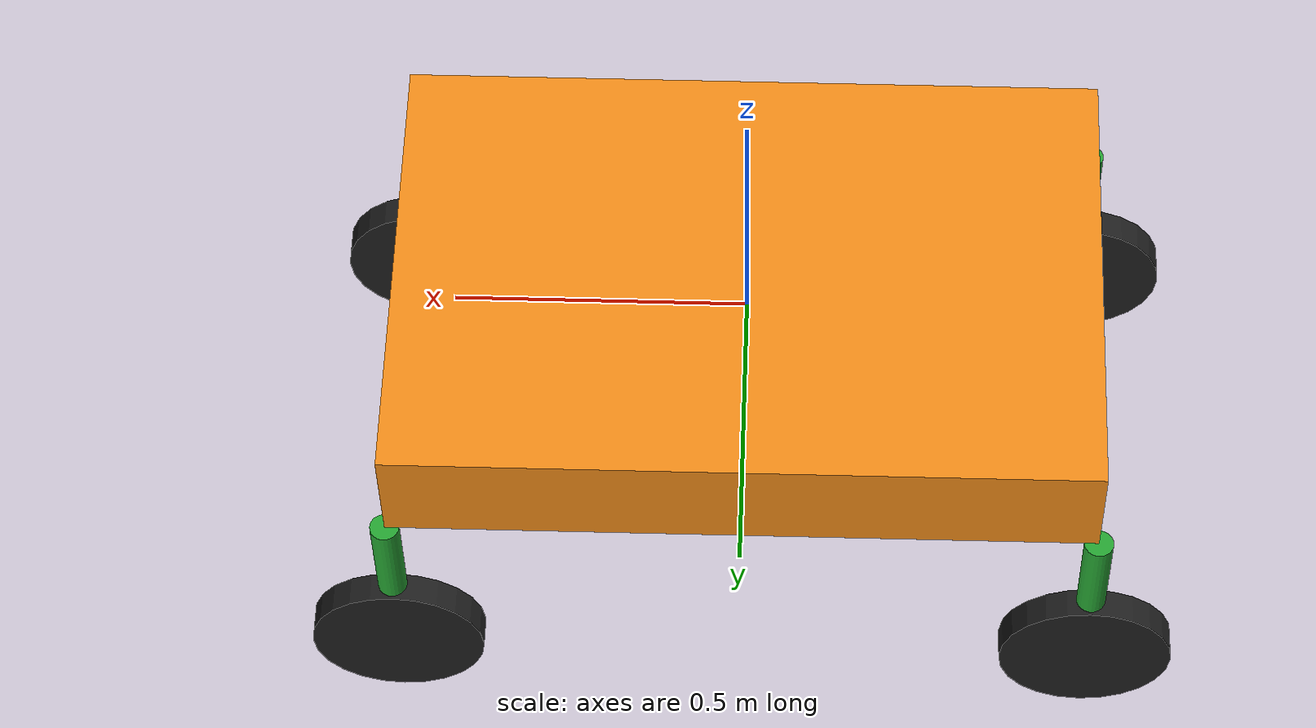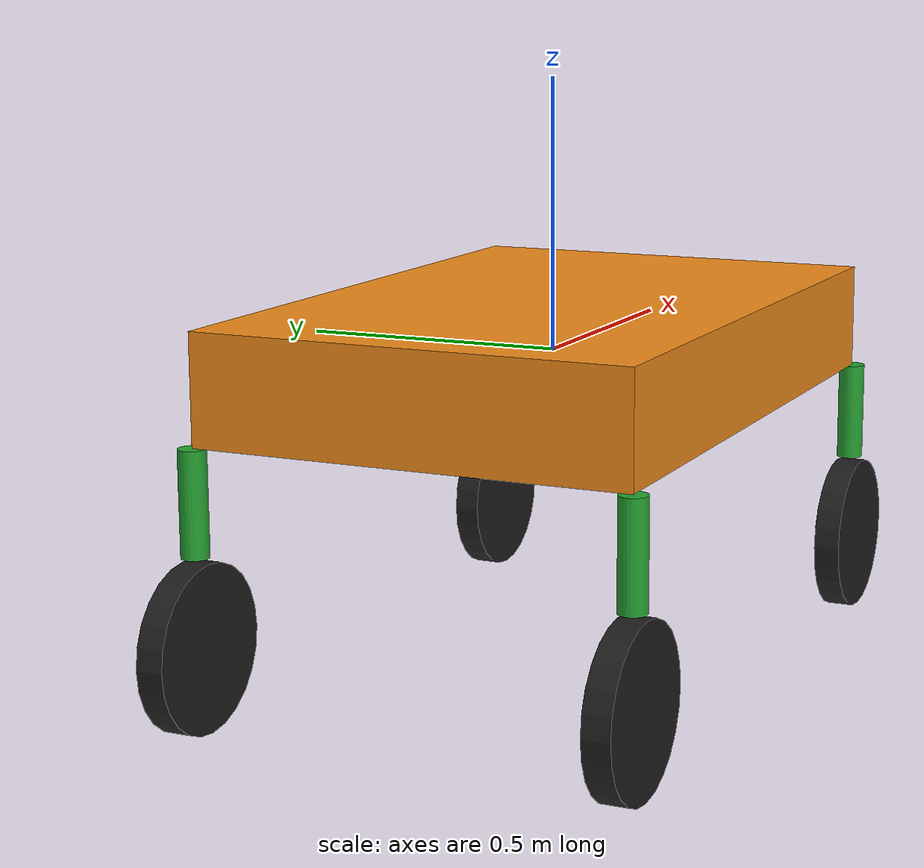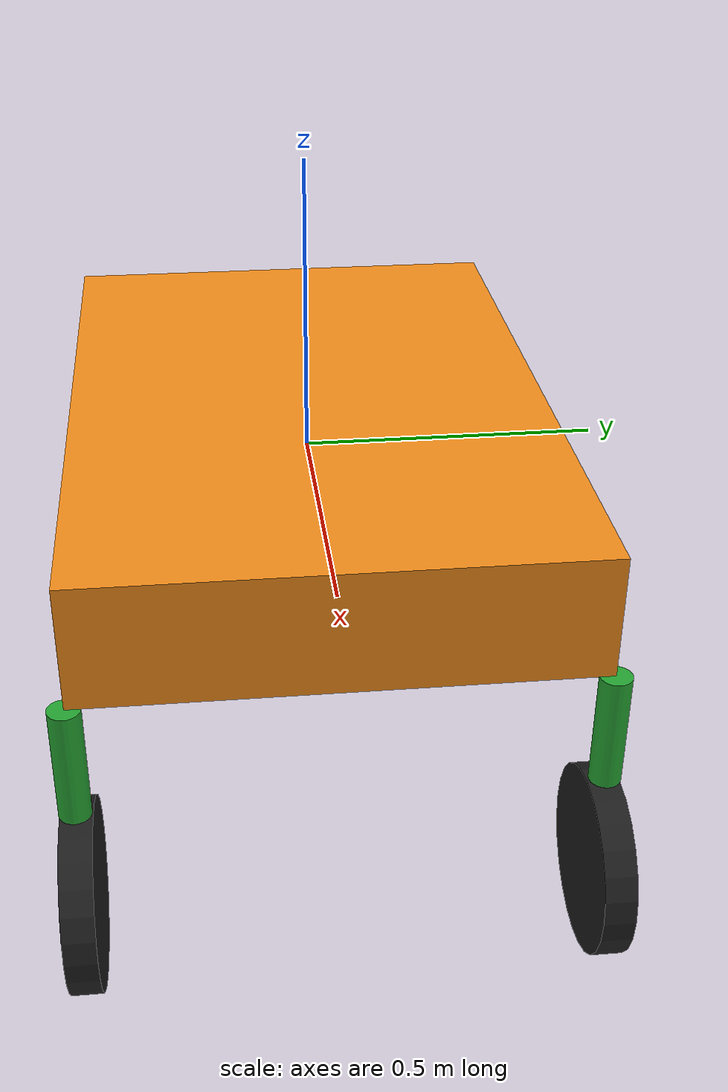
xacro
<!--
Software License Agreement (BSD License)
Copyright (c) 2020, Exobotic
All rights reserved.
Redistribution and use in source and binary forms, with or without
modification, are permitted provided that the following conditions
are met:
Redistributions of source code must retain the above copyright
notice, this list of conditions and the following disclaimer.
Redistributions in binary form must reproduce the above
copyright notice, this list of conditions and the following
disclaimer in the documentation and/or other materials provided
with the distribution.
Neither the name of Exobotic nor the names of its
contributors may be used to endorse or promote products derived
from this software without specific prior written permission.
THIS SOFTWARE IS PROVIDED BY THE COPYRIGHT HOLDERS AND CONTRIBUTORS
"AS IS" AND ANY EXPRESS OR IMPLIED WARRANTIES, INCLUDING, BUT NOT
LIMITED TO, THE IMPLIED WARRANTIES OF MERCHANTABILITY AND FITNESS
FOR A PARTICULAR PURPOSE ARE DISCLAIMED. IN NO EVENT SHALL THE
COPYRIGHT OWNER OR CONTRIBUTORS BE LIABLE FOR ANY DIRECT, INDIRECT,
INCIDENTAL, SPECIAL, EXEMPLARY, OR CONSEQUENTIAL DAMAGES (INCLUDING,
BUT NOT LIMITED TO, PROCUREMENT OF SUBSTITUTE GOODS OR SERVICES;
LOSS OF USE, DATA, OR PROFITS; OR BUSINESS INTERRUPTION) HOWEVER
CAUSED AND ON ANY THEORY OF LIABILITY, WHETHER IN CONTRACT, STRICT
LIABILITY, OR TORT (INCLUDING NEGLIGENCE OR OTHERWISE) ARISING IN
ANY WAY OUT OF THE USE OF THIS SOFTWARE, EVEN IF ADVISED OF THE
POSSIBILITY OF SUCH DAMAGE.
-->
<?xml version="1.0"?>

<robot name="swervebot" xmlns:xacro="http://www.ros.org/wiki/xacro">

	<!-- Constants for robot dimensions -->
	<xacro:property name="PI" value="3.1415926535897931"/>
	<xacro:property name="height" value="0.5" /> <!-- height of the body -->

	<xacro:property name="body_m" value="25.0" /> <!-- mass of the body structure -->
	<xacro:property name="body_l" value="1.2" /> <!-- length of the body structure -->
	<xacro:property name="body_w" value="0.8" /> <!-- width of the body structure -->
	<xacro:property name="body_h" value="0.2" /> <!-- thickness of the body structure -->
	<xacro:property name="leg_m" value="1" /> <!-- mass of a thigh leg -->
	<xacro:property name="leg_r" value="0.025" /> <!-- radius of the leg cylinders -->
	<xacro:property name="wheel_m" value="5" /> <!-- mass of a single wheel -->
	<xacro:property name="wheel_r" value="0.15" /> <!-- radius of the wheels -->
	<xacro:property name="wheel_h" value="0.05" /> <!-- thickness of the wheels -->
	<xacro:property name="wheel_off" value="0.01" /> <!-- thickness of the wheels -->
	<xacro:property name="joint_damping" value="1" /> <!-- damping of all joints -->

	<!-- Import all Gazebo-customization elements, including Gazebo colors -->
	<xacro:include filename="$(find swerve_omni_controller)/urdf/swervebot.gazebo" />
	<!-- Import Rviz colors -->
	<xacro:include filename="$(find swerve_omni_controller)/urdf/materials.xacro" />

	<link name="robot_footprint"></link>

	<joint name="robot_footprint_joint" type="fixed">
		<origin xyz="0 0 0" rpy="0 0 0" />
		<parent link="robot_footprint"/>
		<child link="body" />
	</joint>

	<!-- BODY link -->
	<link name="body">
		<collision>
			<origin xyz="0 0 0" rpy="0 0 0"/>
			<geometry>
				<box size="${body_l} ${body_w} ${body_h}"/>
			</geometry>
		</collision>
		<visual>
			<origin xyz="0 0 0" rpy="0 0 0"/>
			<geometry>
				<box size="${body_l} ${body_w} ${body_h}"/>
			</geometry>
			<material name="orange"/>
		</visual>
		<inertial>
			<origin xyz="0 0 0" rpy="0 0 0"/>
			<mass value="${body_m}"/>
			<inertia ixx="${body_m / 12.0 * (body_w*body_w + body_h*body_h)}" ixy="0.0" ixz="0.0"
					 iyy="${body_m / 12.0 * (body_l*body_l + body_h*body_h)}" iyz="0.0"
					 izz="${body_m / 12.0 * (body_w*body_w + body_l*body_l)}"/>
		</inertial>
	</link>

	<!-- LEG joints -->
	<joint name="leg_lf_joint" type="continuous">
		<origin xyz="${body_l / 2} ${body_w / 2} ${-body_h/2 - (height - 2*wheel_r - wheel_off)/2}" rpy="0 0 0"/>
		<parent link="body" />
		<child link="leg_lf" />
		<dynamics damping="${joint_damping}"/>
		<axis xyz="0 0 1" />
	</joint>
	<joint name="leg_rf_joint" type="continuous">
		<origin xyz="${body_l / 2} ${-body_w / 2} ${-body_h/2 - (height - 2*wheel_r - wheel_off)/2}" rpy="0 0 0"/>
		<parent link="body" />
		<child link="leg_rf" />
		<dynamics damping="${joint_damping}"/>
		<axis xyz="0 0 1" />
	</joint>
	<joint name="leg_lh_joint" type="continuous">
		<origin xyz="${-body_l / 2} ${body_w / 2} ${-body_h/2 - (height - 2*wheel_r - wheel_off)/2}" rpy="0 0 0"/>
		<parent link="body" />
		<child link="leg_lh" />
		<dynamics damping="${joint_damping}"/>
		<axis xyz="0 0 1" />
	</joint>
	<joint name="leg_rh_joint" type="continuous">
		<origin xyz="${-body_l / 2} ${-body_w / 2} ${-body_h/2 - (height - 2*wheel_r - wheel_off)/2}" rpy="0 0 0"/>
		<parent link="body" />
		<child link="leg_rh" />
		<dynamics damping="${joint_damping}"/>
		<axis xyz="0 0 1" />
	</joint>

	<!-- LEG links -->
	<link name="leg_lf">
		<collision>
			<origin xyz="0 0 0" rpy="0 0 0"/>
			<geometry>
				<cylinder radius="${leg_r}" length="${height - 2*wheel_r - wheel_off}"/>
			</geometry>
		</collision>
		<visual>
			<origin xyz="0 0 0" rpy="0 0 0"/>
			<geometry>
				<cylinder radius="${leg_r}" length="${height - 2*wheel_r - wheel_off}"/>
			</geometry>
			<material name="green"/>
		</visual>
		<inertial>
			<origin xyz="0 0 0" rpy="0 0 0"/>
			<mass value="${leg_m}"/>
			<inertia ixx="${leg_m / 12.0 * (3*leg_r*leg_r + (height - 2*wheel_r - wheel_off)*(height - 2*wheel_r - wheel_off))}" ixy="0.0" ixz="0.0"
					 iyy="${leg_m / 12.0 * (3*leg_r*leg_r + (height - 2*wheel_r - wheel_off)*(height - 2*wheel_r - wheel_off))}" iyz="0.0"
					 izz="${leg_m / 2.0 * leg_r * leg_r}"/>
		</inertial>
	</link>
	<link name="leg_rf">
		<collision>
			<origin xyz="0 0 0" rpy="0 0 0"/>
			<geometry>
				<cylinder radius="${leg_r}" length="${height - 2*wheel_r - wheel_off}"/>
			</geometry>
		</collision>
		<visual>
			<origin xyz="0 0 0" rpy="0 0 0"/>
			<geometry>
				<cylinder radius="${leg_r}" length="${height - 2*wheel_r - wheel_off}"/>
			</geometry>
			<material name="green"/>
		</visual>
		<inertial>
			<origin xyz="0 0 0" rpy="0 0 0"/>
			<mass value="${leg_m}"/>
			<inertia ixx="${leg_m / 12.0 * (3*leg_r*leg_r + (height - 2*wheel_r - wheel_off)*(height - 2*wheel_r - wheel_off))}" ixy="0.0" ixz="0.0"
					 iyy="${leg_m / 12.0 * (3*leg_r*leg_r + (height - 2*wheel_r - wheel_off)*(height - 2*wheel_r - wheel_off))}" iyz="0.0"
					 izz="${leg_m / 2.0 * leg_r * leg_r}"/>
		</inertial>
	</link>
	<link name="leg_lh">
		<collision>
			<origin xyz="0 0 0" rpy="0 0 0"/>
			<geometry>
				<cylinder radius="${leg_r}" length="${height - 2*wheel_r - wheel_off}"/>
			</geometry>
		</collision>
		<visual>
			<origin xyz="0 0 0" rpy="0 0 0"/>
			<geometry>
				<cylinder radius="${leg_r}" length="${height - 2*wheel_r - wheel_off}"/>
			</geometry>
			<material name="green"/>
		</visual>
		<inertial>
			<origin xyz="0 0 0" rpy="0 0 0"/>
			<mass value="${leg_m}"/>
			<inertia ixx="${leg_m / 12.0 * (3*leg_r*leg_r + (height - 2*wheel_r - wheel_off)*(height - 2*wheel_r - wheel_off))}" ixy="0.0" ixz="0.0"
					 iyy="${leg_m / 12.0 * (3*leg_r*leg_r + (height - 2*wheel_r - wheel_off)*(height - 2*wheel_r - wheel_off))}" iyz="0.0"
					 izz="${leg_m / 2.0 * leg_r * leg_r}"/>
		</inertial>
	</link>
	<link name="leg_rh">
		<collision>
			<origin xyz="0 0 0" rpy="0 0 0"/>
			<geometry>
				<cylinder radius="${leg_r}" length="${height - 2*wheel_r - wheel_off}"/>
			</geometry>
		</collision>
		<visual>
			<origin xyz="0 0 0" rpy="0 0 0"/>
			<geometry>
				<cylinder radius="${leg_r}" length="${height - 2*wheel_r - wheel_off}"/>
			</geometry>
			<material name="green"/>
		</visual>
		<inertial>
			<origin xyz="0 0 0" rpy="0 0 0"/>
			<mass value="${leg_m}"/>
			<inertia ixx="${leg_m / 12.0 * (3*leg_r*leg_r + (height - 2*wheel_r - wheel_off)*(height - 2*wheel_r - wheel_off))}" ixy="0.0" ixz="0.0"
					 iyy="${leg_m / 12.0 * (3*leg_r*leg_r + (height - 2*wheel_r - wheel_off)*(height - 2*wheel_r - wheel_off))}" iyz="0.0"
					 izz="${leg_m / 2.0 * leg_r * leg_r}"/>
		</inertial>
	</link>

	<!-- WHEEL joints -->
	<joint name="wheel_lf_joint" type="continuous">
		<parent link="leg_lf"/>
		<child link="wheel_lf"/>
		<origin xyz="0 0 ${-(height + wheel_off) / 2}" rpy="0 0 0"/>
		<dynamics damping="${joint_damping}"/>
		<axis xyz="0 1 0"/>
	</joint>
	<joint name="wheel_rf_joint" type="continuous">
		<parent link="leg_rf"/>
		<child link="wheel_rf"/>
		<origin xyz="0 0 ${-(height + wheel_off) / 2}" rpy="0 0 0"/>
		<dynamics damping="${joint_damping}"/>
		<axis xyz="0 1 0"/>
	</joint>
	<joint name="wheel_lh_joint" type="continuous">
		<parent link="leg_lh"/>
		<child link="wheel_lh"/>
		<origin xyz="0 0 ${-(height + wheel_off) / 2}" rpy="0 0 0"/>
		<dynamics damping="${joint_damping}"/>
		<axis xyz="0 1 0"/>
	</joint>
	<joint name="wheel_rh_joint" type="continuous">
		<parent link="leg_rh"/>
		<child link="wheel_rh"/>
		<origin xyz="0 0 ${-(height + wheel_off) / 2}" rpy="0 0 0"/>
		<dynamics damping="${joint_damping}"/>
		<axis xyz="0 1 0"/>
	</joint>

	<!-- WHEEL links -->
	<link name="wheel_lf">
		<collision>
			<origin xyz="0 0 0" rpy="0 ${PI/2} ${PI/2}"/>
			<geometry>
				<cylinder radius="${wheel_r}" length="${wheel_h}"/>
			</geometry>
		</collision>
		<visual>
  			<origin xyz="0 0 0" rpy="0 ${PI/2} ${PI/2}"/>
			<geometry>
				<cylinder radius="${wheel_r}" length="${wheel_h}"/>
			</geometry>
			<material name="black"/>
		</visual>
		<inertial>
  			<origin xyz="0 0 0" rpy="0 ${PI/2} ${PI/2}"/>
			<mass value="${wheel_m}"/>
			<inertia ixx="${wheel_m / 12.0 * (3*wheel_r*wheel_r + wheel_h*wheel_h)}" ixy="0.0" ixz="0.0"
					 iyy="${wheel_m / 12.0 * (3*wheel_r*wheel_r + wheel_h*wheel_h)}" iyz="0.0"
					 izz="${wheel_m / 2.0 * wheel_r * wheel_r}"/>
		</inertial>
	</link>
	<link name="wheel_rf">
		<collision>
			<origin xyz="0 0 0" rpy="0 ${PI/2} ${PI/2}"/>
			<geometry>
				<cylinder radius="${wheel_r}" length="${wheel_h}"/>
			</geometry>
		</collision>
		<visual>
  			<origin xyz="0 0 0" rpy="0 ${PI/2} ${PI/2}"/>
			<geometry>
				<cylinder radius="${wheel_r}" length="${wheel_h}"/>
			</geometry>
			<material name="black"/>
		</visual>
		<inertial>
  			<origin xyz="0 0 0" rpy="0 ${PI/2} ${PI/2}"/>
			<mass value="${wheel_m}"/>
			<inertia ixx="${wheel_m / 12.0 * (3*wheel_r*wheel_r + wheel_h*wheel_h)}" ixy="0.0" ixz="0.0"
					 iyy="${wheel_m / 12.0 * (3*wheel_r*wheel_r + wheel_h*wheel_h)}" iyz="0.0"
					 izz="${wheel_m / 2.0 * wheel_r * wheel_r}"/>
		</inertial>
	</link>
	<link name="wheel_lh">
		<collision>
			<origin xyz="0 0 0" rpy="0 ${PI/2} ${PI/2}"/>
			<geometry>
				<cylinder radius="${wheel_r}" length="${wheel_h}"/>
			</geometry>
		</collision>
		<visual>
  			<origin xyz="0 0 0" rpy="0 ${PI/2} ${PI/2}"/>
			<geometry>
				<cylinder radius="${wheel_r}" length="${wheel_h}"/>
			</geometry>
			<material name="black"/>
		</visual>
		<inertial>
  			<origin xyz="0 0 0" rpy="0 ${PI/2} ${PI/2}"/>
			<mass value="${wheel_m}"/>
			<inertia ixx="${wheel_m / 12.0 * (3*wheel_r*wheel_r + wheel_h*wheel_h)}" ixy="0.0" ixz="0.0"
					 iyy="${wheel_m / 12.0 * (3*wheel_r*wheel_r + wheel_h*wheel_h)}" iyz="0.0"
					 izz="${wheel_m / 2.0 * wheel_r * wheel_r}"/>
		</inertial>
	</link>
	<link name="wheel_rh">
		<collision>
			<origin xyz="0 0 0" rpy="0 ${PI/2} ${PI/2}"/>
			<geometry>
				<cylinder radius="${wheel_r}" length="${wheel_h}"/>
			</geometry>
		</collision>
		<visual>
  			<origin xyz="0 0 0" rpy="0 ${PI/2} ${PI/2}"/>
			<geometry>
				<cylinder radius="${wheel_r}" length="${wheel_h}"/>
			</geometry>
			<material name="black"/>
		</visual>
		<inertial>
  			<origin xyz="0 0 0" rpy="0 ${PI/2} ${PI/2}"/>
			<mass value="${wheel_m}"/>
			<inertia ixx="${wheel_m / 12.0 * (3*wheel_r*wheel_r + wheel_h*wheel_h)}" ixy="0.0" ixz="0.0"
					 iyy="${wheel_m / 12.0 * (3*wheel_r*wheel_r + wheel_h*wheel_h)}" iyz="0.0"
					 izz="${wheel_m / 2.0 * wheel_r * wheel_r}"/>
		</inertial>
	</link>

	<!-- ROS Control plugin for Gazebo -->
	<gazebo>
		<plugin name="gazebo_ros_control" filename="libgazebo_ros_control.so">
			<robotNamespace>/swervebot</robotNamespace>
		</plugin>
	</gazebo>
	<!-- SENSORS: nothing yet -->

	<!-- ACTUATORS -->

	<!-- Transmission - Leg Position -->

	<transmission name="leg_lf_trans">
		<type>transmission_interface/SimpleTransmission</type>
		<joint name="leg_lf_joint">
			<hardwareInterface>hardware_interface/EffortJointInterface</hardwareInterface>
		</joint>
		<actuator name="leg_lf_mot">
			<mechanicalReduction>1</mechanicalReduction>
		</actuator>
	</transmission>

	<transmission name="leg_rf_trans">
		<type>transmission_interface/SimpleTransmission</type>
		<joint name="leg_rf_joint">
			<hardwareInterface>hardware_interface/EffortJointInterface</hardwareInterface>
		</joint>
		<actuator name="leg_rf_mot">
			<mechanicalReduction>1</mechanicalReduction>
		</actuator>
	</transmission>

	<transmission name="leg_lh_trans">
		<type>transmission_interface/SimpleTransmission</type>
		<joint name="leg_lh_joint">
			<hardwareInterface>hardware_interface/EffortJointInterface</hardwareInterface>
		</joint>
		<actuator name="leg_lh_mot">
			<mechanicalReduction>1</mechanicalReduction>
		</actuator>
	</transmission>

	<transmission name="leg_rh_trans">
		<type>transmission_interface/SimpleTransmission</type>
		<joint name="leg_rh_joint">
			<hardwareInterface>hardware_interface/EffortJointInterface</hardwareInterface>
		</joint>
		<actuator name="leg_rh_mot">
			<mechanicalReduction>1</mechanicalReduction>
		</actuator>
	</transmission>

	<!-- Transmission - Wheel Velocity -->

	<transmission name="wheel_lf_trans">
		<type>transmission_interface/SimpleTransmission</type>
		<actuator name="wheel_lf_mot">
			<hardwareInterface>hardware_interface/VelocityJointInterface</hardwareInterface>
			<mechanicalReduction>1</mechanicalReduction>
		</actuator>
		<joint name="wheel_lf_joint">
			<hardwareInterface>hardware_interface/VelocityJointInterface</hardwareInterface>
		</joint>
	</transmission>

	<transmission name="wheel_rf_trans">
		<type>transmission_interface/SimpleTransmission</type>
		<actuator name="wheel_rf_mot">
			<hardwareInterface>hardware_interface/VelocityJointInterface</hardwareInterface>
			<mechanicalReduction>1</mechanicalReduction>
		</actuator>
		<joint name="wheel_rf_joint">
			<hardwareInterface>hardware_interface/VelocityJointInterface</hardwareInterface>
		</joint>
	</transmission>

	<transmission name="wheel_lh_trans">
		<type>transmission_interface/SimpleTransmission</type>
		<actuator name="wheel_lh_mot">
			<hardwareInterface>hardware_interface/VelocityJointInterface</hardwareInterface>
			<mechanicalReduction>1</mechanicalReduction>
		</actuator>
		<joint name="wheel_lh_joint">
			<hardwareInterface>hardware_interface/VelocityJointInterface</hardwareInterface>
		</joint>
	</transmission>

	<transmission name="wheel_rh_trans">
		<type>transmission_interface/SimpleTransmission</type>
		<actuator name="wheel_rh_mot">
			<hardwareInterface>hardware_interface/VelocityJointInterface</hardwareInterface>
			<mechanicalReduction>1</mechanicalReduction>
		</actuator>
		<joint name="wheel_rh_joint">
			<hardwareInterface>hardware_interface/VelocityJointInterface</hardwareInterface>
		</joint>
	</transmission>

</robot>
